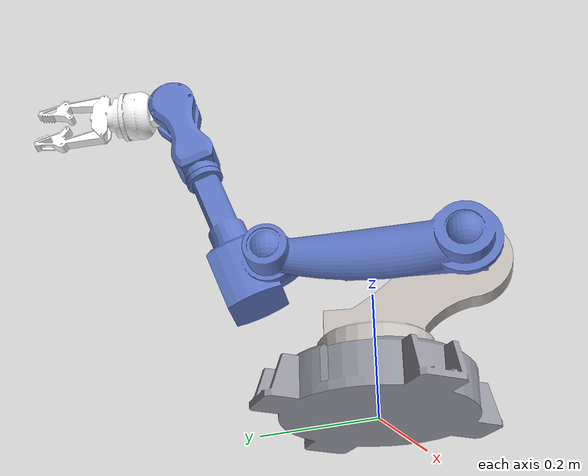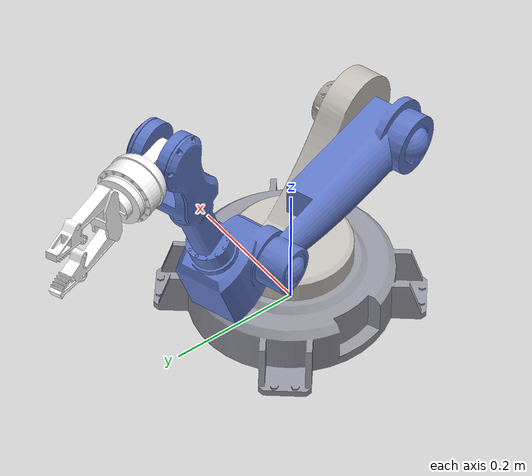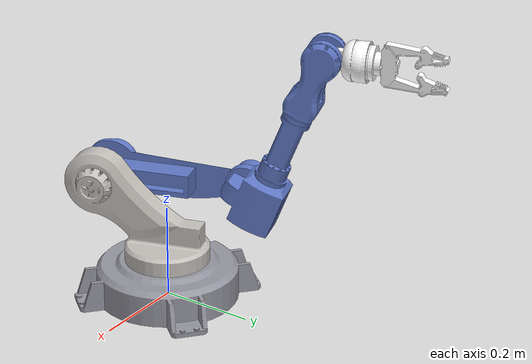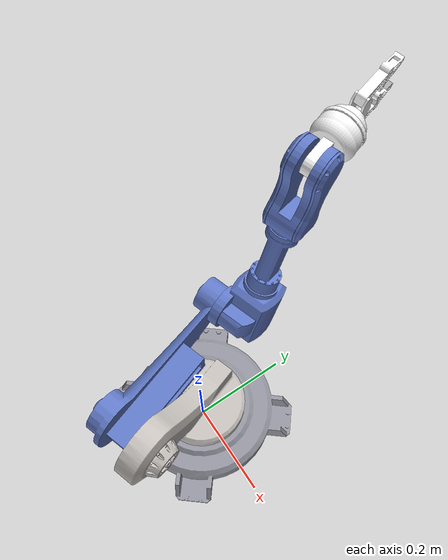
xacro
<?xml version="1.0"?>
<robot xmlns:xacro="http://www.ros.org/wiki/xacro" name="myrobot_rpr">
    <xacro:arg name="initial_positions_file" default="initial_positions.yaml" />

    <!-- Import myrobot_rpr urdf file -->
    <xacro:include filename="$(find myrobot_rpr)/urdf/myRobot_rpr.urdf" />

    <!-- Import control_xacro -->
    <xacro:include filename="myrobot_rpr.ros2_control.xacro" />

    <xacro:myrobot_rpr_ros2_control name="FakeSystem" initial_positions_file="$(arg initial_positions_file)"/>

</robot>

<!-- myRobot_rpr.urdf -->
<robot
  name="myrobot_rpr">

  <link
    name="base_link">
    <inertial>
      <origin
        xyz="0.0020073 0.00018927 0.038711"
        rpy="0.0 0.0 0.0" />
      <mass
        value="5.7724" />
      <inertia
        ixx="0.0"
        ixy="0.0"
        ixz="0.0"
        iyy="0.0"
        iyz="0.0"
        izz="0.0" />
    </inertial>
    <visual>
      <origin
        xyz="0.0 0.0 0.0"
        rpy="0.0 0.0 0.0" />
      <geometry>
        <mesh
          filename="file:///home/farhan/mytest_ws/src/myrobot_rpr/meshes/base_link.STL" />
      </geometry>
      <material
        name="">
        <color
          rgba="0.58824 0.58824 0.63137 1.0" />
      </material>
    </visual>
    <collision>
      <origin
        xyz="0.0 0.0 0.0"
        rpy="0.0 0.0 0.0" />
      <geometry>
        <mesh
          filename="file:///home/farhan/mytest_ws/src/myrobot_rpr/meshes/base_link.STL" />
      </geometry>
    </collision>
  </link>
  <link
    name="link1R">
    <inertial>
      <origin
        xyz="0.020492 -0.054677 0.16798"
        rpy="0.0 0.0 0.0" />
      <mass
        value="2.3424" />
      <inertia
        ixx="0.022836"
        ixy="0.003905"
        ixz="-0.0032379"
        iyy="0.013567"
        iyz="0.0087325"
        izz="0.016534" />
    </inertial>
    <visual>
      <origin
        xyz="0.0 0.0 0.0"
        rpy="0.0 0.0 0.0" />
      <geometry>
        <mesh
          filename="file:///home/farhan/mytest_ws/src/myrobot_rpr/meshes/link1R.STL" />
      </geometry>
      <material
        name="">
        <color
          rgba="0.77647 0.75686 0.73725 1.0" />
      </material>
    </visual>
    <collision>
      <origin
        xyz="0.0 0.0 0.0"
        rpy="0.0 0.0 0.0" />
      <geometry>
        <mesh
          filename="file:///home/farhan/mytest_ws/src/myrobot_rpr/meshes/link1R.STL" />
      </geometry>
    </collision>
  </link>
  <joint
    name="joint1R"
    type="revolute">
    <origin
      xyz="0.0 0.0 0.0"
      rpy="0.0 0.0 0.0" />
    <parent
      link="base_link" />
    <child
      link="link1R" />
    <axis
      xyz="0.0 0.0 1.0" />
    <limit
      lower="0.0"
      upper="4.71"
      effort="300.0"
      velocity="3.0" />
  </joint>

  <link
    name="link2P">
    <inertial>
      <origin
        xyz="-0.1934 0.0042656 0.024042"
        rpy="0.0 0.0 0.0" />
      <mass
        value="1.2904" />
      <inertia
        ixx="0.0011267"
        ixy="-4.5641E-05"
        ixz="-0.00034321"
        iyy="0.015484"
        iyz="3.6415E-05"
        izz="0.015383" />
    </inertial>
    <visual>
      <origin
        xyz="0.0 0.0 0.0"
        rpy="0.0 0.0 0.0" />
      <geometry>
        <mesh
          filename="file:///home/farhan/mytest_ws/src/myrobot_rpr/meshes/link2P.STL" />
      </geometry>
      <material
        name="">
        <color
          rgba="0.38039 0.47843 0.78824 1.0" />
      </material>
    </visual>
    <collision>
      <origin
        xyz="0.0 0.0 0.0"
        rpy="0.0 0.0 0.0" />
      <geometry>
        <mesh
          filename="file:///home/farhan/mytest_ws/src/myrobot_rpr/meshes/link2P.STL" />
      </geometry>
    </collision>
  </link>
  <joint
    name="join2P"
    type="prismatic">
    <origin
      xyz="-0.095289 0.13025 0.24795"
      rpy="-1.5708 0.0 1.8874" />
    <parent
      link="link1R" />
    <child
      link="link2P" />
    <axis
      xyz="-1.0 0.0 0.0" />
    <limit
      lower="0.0"
      upper="0.19"
      effort="250.0"
      velocity="3.0" />
  </joint>
  <link
    name="link3R">
    <inertial>
      <origin
        xyz="0.08206 -0.097338 -0.026755"
        rpy="0.0 0.0 0.0" />
      <mass
        value="1.9098" />
      <inertia
        ixx="0.0073879"
        ixy="0.0022803"
        ixz="0.00014791"
        iyy="0.0033525"
        iyz="-3.0177E-05"
        izz="0.0086259" />
    </inertial>
    <visual>
      <origin
        xyz="0.0 0.0 0.0"
        rpy="0.0 0.0 0.0" />
      <geometry>
        <mesh
          filename="file:///home/farhan/mytest_ws/src/myrobot_rpr/meshes/link3R.STL" />
      </geometry>
      <material
        name="">
        <color
          rgba="0.38039 0.47843 0.78824 1.0" />
      </material>
    </visual>
    <collision>
      <origin
        xyz="0.0 0.0 0.0"
        rpy="0.0 0.0 0.0" />
      <geometry>
        <mesh
          filename="file:///home/farhan/mytest_ws/src/myrobot_rpr/meshes/link3R.STL" />
      </geometry>
    </collision>
  </link>
  <joint
    name="joint3R"
    type="revolute">
    <origin
      xyz="0.0 0.0 0.0"
      rpy="0.0 0.0 0.0" />
    <parent
      link="link2P" />
    <child
      link="link3R" />
    <axis
      xyz="0.0 0.0 -1.0" />
    <limit
      lower="-1.04"
      upper="1.70"
      effort="300.0"
      velocity="3.0" />
  </joint>
  <link
    name="link4R">
    <inertial>
      <origin
        xyz="-0.079477 -0.00030616 -0.01"
        rpy="0.0 0.0 0.0" />
      <mass
        value="0.31757" />
      <inertia
        ixx="0.00022192"
        ixy="-4.0258E-07"
        ixz="-4.0658E-20"
        iyy="0.00032643"
        iyz="-2.1176E-21"
        izz="0.00032932" />
    </inertial>
    <visual>
      <origin
        xyz="0.0 0.0 0.0"
        rpy="0.0 0.0 0.0" />
      <geometry>
        <mesh
          filename="file:///home/farhan/mytest_ws/src/myrobot_rpr/meshes/link4R.STL" />
      </geometry>
      <material
        name="">
        <color
          rgba="1.0 1.0 1.0 1.0" />
      </material>
    </visual>
    <collision>
      <origin
        xyz="0.0 0.0 0.0"
        rpy="0.0 0.0 0.0" />
      <geometry>
        <mesh
          filename="file:///home/farhan/mytest_ws/src/myrobot_rpr/meshes/link4R.STL" />
      </geometry>
    </collision>
  </link>
  <joint
    name="join4R"
    type="revolute">
    <origin
      xyz="0.15374 -0.31769 -0.038327"
      rpy="3.1354 0.016476 -3.1229" />
    <parent
      link="link3R" />
    <child
      link="link4R" />
    <axis
      xyz="0.0 0.0 -1.0" />
    <limit
      lower="-3.14"
      upper="0.0"
      effort="300.0"
      velocity="3.0" />
  </joint>
  <link
    name="link5R">
    <inertial>
      <origin
        xyz="-0.017584 0.0014582 0.016342"
        rpy="0.0 0.0 0.0" />
      <mass
        value="0.076424" />
      <inertia
        ixx="3.8275E-05"
        ixy="-3.023E-07"
        ixz="6.5981E-07"
        iyy="3.2028E-05"
        iyz="2.3207E-07"
        izz="3.9937E-05" />
    </inertial>
    <visual>
      <origin
        xyz="0.0 0.0 0.0"
        rpy="0.0 0.0 0.0" />
      <geometry>
        <mesh
          filename="file:///home/farhan/mytest_ws/src/myrobot_rpr/meshes/link5R.STL" />
      </geometry>
      <material
        name="">
        <color
          rgba="1.0 1.0 1.0 1.0" />
      </material>
    </visual>
    <collision>
      <origin
        xyz="0.0 0.0 0.0"
        rpy="0.0 0.0 0.0" />
      <geometry>
        <mesh
          filename="file:///home/farhan/mytest_ws/src/myrobot_rpr/meshes/link5R.STL" />
      </geometry>
    </collision>
  </link>
  <joint
    name="joint5R"
    type="revolute">
    <origin
      xyz="-0.14 0.00063358 0.011969"
      rpy="-3.1219 -1.2378 0.0" />
    <parent
      link="link4R" />
    <child
      link="link5R" />
    <axis
      xyz="-0.32691 -0.014799 -0.94494" />
    <limit
      lower="0.0"
      upper="6.0"
      effort="250.0"
      velocity="2.0" />
  </joint>
  <link
    name="grip1">
    <inertial>
      <origin
        xyz="-0.053931 0.012084 0.015"
        rpy="0.0 0.0 0.0" />
      <mass
        value="0.038673" />
      <inertia
        ixx="4.5049E-06"
        ixy="6.0017E-06"
        ixz="1.0588E-21"
        iyy="4.5966E-05"
        iyz="-3.494E-21"
        izz="4.863E-05" />
    </inertial>
    <visual>
      <origin
        xyz="0.0 0.0 0.0"
        rpy="0.0 0.0 0.0" />
      <geometry>
        <mesh
          filename="file:///home/farhan/mytest_ws/src/myrobot_rpr/meshes/grip1.STL" />
      </geometry>
      <material
        name="">
        <color
          rgba="1.0 1.0 1.0 1.0" />
      </material>
    </visual>
    <collision>
      <origin
        xyz="0.0 0.0 0.0"
        rpy="0.0 0.0 0.0" />
      <geometry>
        <mesh
          filename="file:///home/farhan/mytest_ws/src/myrobot_rpr/meshes/grip1.STL" />
      </geometry>
    </collision>
  </link>
  <joint
    name="jointgrip1"
    type="revolute">
    <origin
      xyz="-0.010966 -0.040416 -0.0028669"
      rpy="-0.50635 -1.1894 0.47536" />
    <parent
      link="link5R" />
    <child
      link="grip1" />
    <axis
      xyz="0.0 0.0 -1.0" />
    <limit
      lower="-1.57"
      upper="0.0"
      effort="100.0"
      velocity="2.0" />
  </joint>
  <link
    name="grip2">
    <inertial>
      <origin
        xyz="0.053679 -0.013157 -0.015"
        rpy="0.0 0.0 0.0" />
      <mass
        value="0.038673" />
      <inertia
        ixx="4.7607E-06"
        ixy="6.8234E-06"
        ixz="-6.2469E-21"
        iyy="4.571E-05"
        iyz="2.9117E-22"
        izz="4.863E-05" />
    </inertial>
    <visual>
      <origin
        xyz="0.0 0.0 0.0"
        rpy="0.0 0.0 0.0" />
      <geometry>
        <mesh
          filename="file:///home/farhan/mytest_ws/src/myrobot_rpr/meshes/grip2.STL" />
      </geometry>
      <material
        name="">
        <color
          rgba="1.0 1.0 1.0 1.0" />
      </material>
    </visual>
    <collision>
      <origin
        xyz="0.0 0.0 0.0"
        rpy="0.0 0.0 0.0" />
      <geometry>
        <mesh
          filename="file:///home/farhan/mytest_ws/src/myrobot_rpr/meshes/grip2.STL" />
      </geometry>
    </collision>
  </link>
  <joint
    name="jointgrip2"
    type="revolute">
    <origin
      xyz="-0.0067511 0.041048 -0.0056009"
      rpy="-3.0818 1.2386 3.1416" />
    <parent
      link="link5R" />
    <child
      link="grip2" />
    <axis
      xyz="0.0 0.0 -1.0" />
    <limit
      lower="-1.57"
      upper="0.0"
      effort="100.0"
      velocity="2.0" />
  </joint>

</robot>
